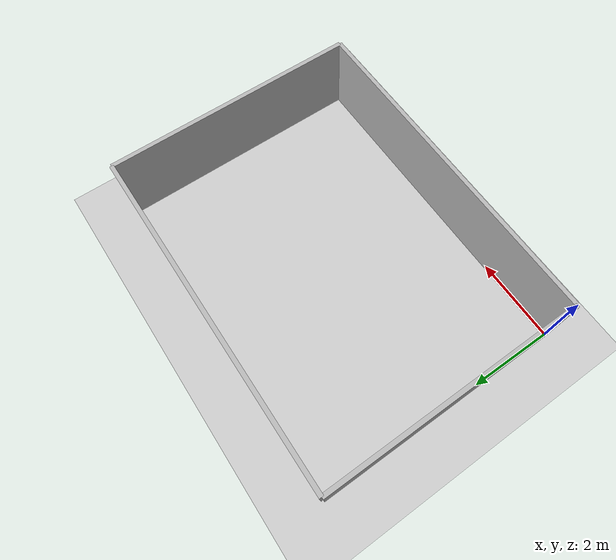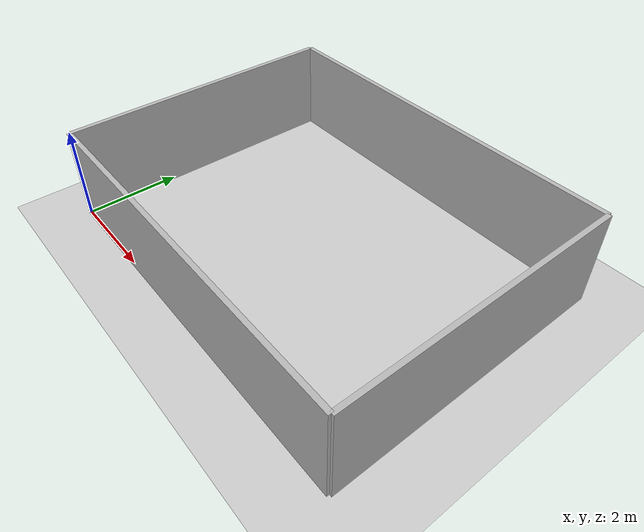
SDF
<sdf version="1.6">
 <world name="default">
  <light name="sun" type="directional">
   <pose>0 0 10 0 -0 0</pose>
   <diffuse>0.8 0.8 0.8 1</diffuse>
   <specular>0.2 0.2 0.2 1</specular>
   <attenuation>
    <range>1000</range>
    <constant>0.9</constant>
    <linear>0.01</linear>
    <quadratic>0.001</quadratic>
   </attenuation>
   <direction>-0.5 0.1 -0.9</direction>
  </light>
  <model name="ground_plane">
   <static>1</static>
   <link name="link">
    <collision name="collision">
     <geometry><plane><normal>0 0 1</normal><size>100 100</size></plane></geometry>
     <surface>
      <contact><collide_bitmask>65535</collide_bitmask></contact>
      <friction><ode><mu>100</mu><mu2>50</mu2></ode></friction>
     </surface>
    </collision>
    <visual name="visual">
     <cast_shadows>0</cast_shadows>
     <geometry><plane><normal>0 0 1</normal><size>100 100</size></plane></geometry>
     <material>
      <script><uri>file://media/materials/scripts/gazebo.material</uri><name>Gazebo/Grey</name></script>
     </material>
    </visual>
   </link>
  </model>
  <gravity>0 0 -9.8</gravity>
  <magnetic_field>6e-06 2.3e-05 -4.2e-05</magnetic_field>
  <atmosphere type="adiabatic"/>
  <physics name="default_physics" default="0" type="ode">
   <max_step_size>0.001</max_step_size>
   <real_time_factor>1</real_time_factor>
   <real_time_update_rate>1000</real_time_update_rate>
  </physics>
  <scene><ambient>0.4 0.4 0.4 1</ambient><background>0.7 0.7 0.7 1</background><shadows>1</shadows></scene>
  <audio><device>default</device></audio>
  <spherical_coordinates>
   <surface_model>EARTH_WGS84</surface_model>
   <latitude_deg>0</latitude_deg>
   <longitude_deg>0</longitude_deg>
   <elevation>0</elevation>
   <heading_deg>0</heading_deg>
  </spherical_coordinates>
  <model name="wall">
   <pose>0 3 1 0 -0 0</pose>
   <static>1</static>
   <link name="link">
    <inertial>
     <mass>10</mass>
     <inertia><ixx>0.083</ixx><ixy>0</ixy><ixz>0</ixz><iyy>0.083</iyy><iyz>0</iyz><izz>0.083</izz></inertia>
    </inertial>
    <collision name="collision"><geometry><box><size>0.1 6 2</size></box></geometry></collision>
    <visual name="visual"><geometry><box><size>0.1 6 2</size></box></geometry></visual>
   </link>
  </model>
  <model name="wall_0">
   <pose>8 3 1 0 -0 0</pose>
   <static>1</static>
   <link name="link">
    <inertial>
     <mass>10</mass>
     <inertia><ixx>0.083</ixx><ixy>0</ixy><ixz>0</ixz><iyy>0.083</iyy><iyz>0</iyz><izz>0.083</izz></inertia>
    </inertial>
    <collision name="collision"><geometry><box><size>0.1 6 2</size></box></geometry></collision>
    <visual name="visual"><geometry><box><size>0.1 6 2</size></box></geometry></visual>
   </link>
  </model>
  <model name="wall_1">
   <pose>4 6 1 0 -0 1.57</pose>
   <static>1</static>
   <link name="link">
    <inertial>
     <mass>10</mass>
     <inertia><ixx>0.083</ixx><ixy>0</ixy><ixz>0</ixz><iyy>0.083</iyy><iyz>0</iyz><izz>0.083</izz></inertia>
    </inertial>
    <collision name="collision"><geometry><box><size>0.1 8 2</size></box></geometry></collision>
    <visual name="visual"><geometry><box><size>0.1 8 2</size></box></geometry></visual>
   </link>
  </model>
  <model name="wall_2">
   <pose>4 0 1 0 -0 1.57</pose>
   <static>1</static>
   <link name="link">
    <inertial>
     <mass>10</mass>
     <inertia><ixx>0.083</ixx><ixy>0</ixy><ixz>0</ixz><iyy>0.083</iyy><iyz>0</iyz><izz>0.083</izz></inertia>
    </inertial>
    <collision name="collision"><geometry><box><size>0.1 8 2</size></box></geometry></collision>
    <visual name="visual"><geometry><box><size>0.1 8 2</size></box></geometry></visual>
   </link>
  </model>
 </world>
</sdf>
